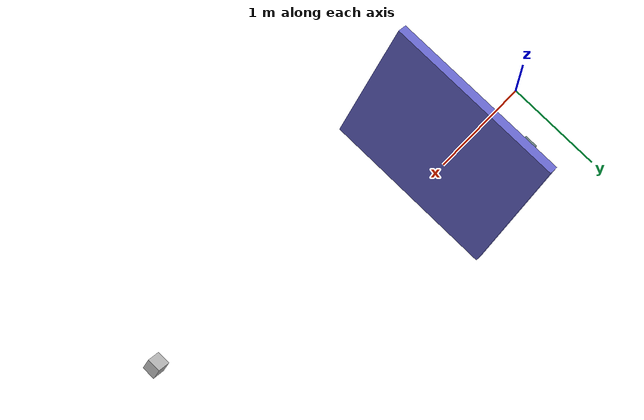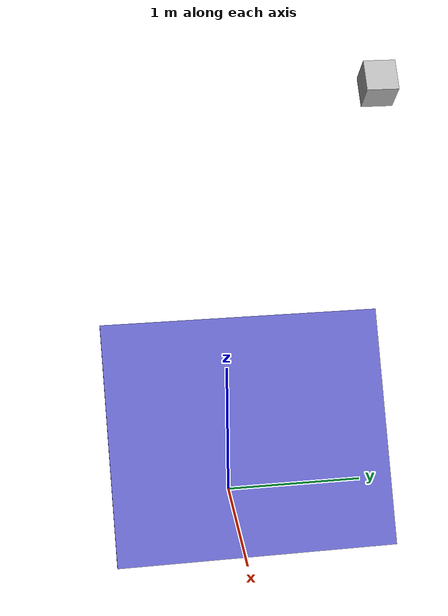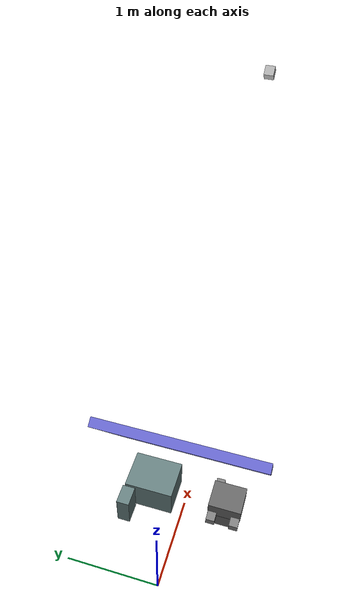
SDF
<sdf version="1.6">
 <world name="default">
  <scene>
   <grid>false</grid>
   <origin_visual>false</origin_visual>
   <sky><clouds><speed>12</speed></clouds></sky>
  </scene>
  <physics name="ode" type="ode">
   <ode><constraints><contact_max_correcting_vel>0</contact_max_correcting_vel></constraints></ode>
   <max_step_size>0.002</max_step_size>
   <real_time_update_rate>0</real_time_update_rate>
  </physics>
  <plugin name="stepping_plugin" filename="libstepping_plugin.so"/>
  <plugin name="gazebo_ros_tf_plugin" filename="libgazebo_ros_tf_plugin.so">
   <model_names>victor table</model_names>
  </plugin>
  <plugin name="collision_map_plugin" filename="libcollision_map_plugin.so"/>
  <include><uri>model://sun</uri></include>
  <include><pose>1 0 1 0 1 0</pose><uri>model://car_hood</uri></include>
  <include><pose>0.8 -0.5 0.4 0 0 0</pose><uri>model://car_engine2</uri></include>
  <include><pose>0.5 0.5 0.4 0 0 0</pose><uri>model://car_tube_and_tank</uri></include>
  <include><uri>model://debugging_camera</uri></include>
 </world>
</sdf>

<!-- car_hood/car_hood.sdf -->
<sdf version="1.6">
    <model name="car_hood">
        <allow_auto_disable>true</allow_auto_disable>
        <link name="link_1">
            <kinematic>true</kinematic>
            <pose>0 0 0.05 0 0 0 0</pose>
            <visual name="visual">
                <geometry>
                    <box>
                        <size>1.5 1.75 0.1</size>
                    </box>
                </geometry>
                <material>
                    <ambient>0.4 0.4 0.8 1.0</ambient>
                    <diffuse>0.4 0.4 0.8 1.0</diffuse>
                </material>
            </visual>
            <collision name="collision">
                <geometry>
                    <box>
                        <size>1.5 1.75 0.1</size>
                    </box>
                </geometry>
            </collision>
        </link>
    </model>
</sdf>

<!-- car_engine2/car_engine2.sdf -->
<sdf version="1.6">
    <model name="car_engine2">
        <allow_auto_disable>true</allow_auto_disable>
        <link name="body2">
            <kinematic>true</kinematic>
            <pose>0 0 0.06 0 0 0 0</pose>
            <visual name="visual">
                <geometry>
                    <box>
                        <size>0.26 0.30 0.21</size>
                    </box>
                </geometry>
                <material>
                    <ambient>0.4 0.4 0.4 1.0</ambient>
                    <diffuse>0.4 0.4 0.4 1.0</diffuse>
                </material>
            </visual>
            <collision name="collision">
                <geometry>
                    <box>
                        <size>0.26 0.30 0.21</size>
                    </box>
                </geometry>
            </collision>
        </link>
        <link name="body">
            <kinematic>true</kinematic>
            <pose>0 0 0.24 0 0 0 0</pose>
            <visual name="visual">
                <geometry>
                    <box>
                        <size>0.30 0.34 0.16</size>
                    </box>
                </geometry>
                <material>
                    <ambient>0.4 0.4 0.4 1.0</ambient>
                    <diffuse>0.4 0.4 0.4 1.0</diffuse>
                </material>
            </visual>
            <collision name="collision">
                <geometry>
                    <box>
                        <size>0.30 0.34 0.16</size>
                    </box>
                </geometry>
                <surface>
                    <friction>
                        <ode>
                            <mu>10.00</mu>
                            <mu2>10.00</mu2>
                        </ode>
                    </friction>
                    <contact>
                        <ode>
                            <kp>1e15</kp>
                            <kd>1e11</kd>
                        </ode>
                    </contact>
                </surface>
            </collision>
        </link>
        <link name="lift_tab1">
            <kinematic>true</kinematic>
            <pose>0.20 0.12 0.18 0 0 0 0</pose>
            <visual name="visual">
                <geometry>
                    <box>
                        <size>0.1 0.09 0.07</size>
                    </box>
                </geometry>
                <material>
                    <ambient>0.5 0.5 0.5 1.0</ambient>
                    <diffuse>0.5 0.5 0.5 1.0</diffuse>
                </material>
            </visual>
            <collision name="collision">
                <geometry>
                    <box>
                        <size>0.1 0.09 0.07</size>
                    </box>
                </geometry>
            </collision>
        </link>
        <link name="lift_tab3">
            <kinematic>true</kinematic>
            <pose>-0.20 0.12 0.18 0 0 0 0</pose>
            <visual name="visual">
                <geometry>
                    <box>
                        <size>0.1 0.09 0.07</size>
                    </box>
                </geometry>
                <material>
                    <ambient>0.5 0.5 0.5 1.0</ambient>
                    <diffuse>0.5 0.5 0.5 1.0</diffuse>
                </material>
            </visual>
            <collision name="collision">
                <geometry>
                    <box>
                        <size>0.1 0.09 0.07</size>
                    </box>
                </geometry>
            </collision>
        </link>
        <link name="lift_tab4">
            <kinematic>true</kinematic>
            <pose>-0.20 -0.12 0.18 0 0 0 0</pose>
            <visual name="visual">
                <geometry>
                    <box>
                        <size>0.1 0.09 0.07</size>
                    </box>
                </geometry>
                <material>
                    <ambient>0.5 0.5 0.5 1.0</ambient>
                    <diffuse>0.5 0.5 0.5 1.0</diffuse>
                </material>
            </visual>
            <collision name="collision">
                <geometry>
                    <box>
                        <size>0.1 0.09 0.07</size>
                    </box>
                </geometry>
            </collision>
        </link>
    </model>
</sdf>

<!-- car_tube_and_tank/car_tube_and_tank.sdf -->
<sdf version="1.6">
    <model name="car_tube_and_tank">
        <allow_auto_disable>true</allow_auto_disable>
        <link name="box">
            <kinematic>true</kinematic>
            <pose>0.32 -0.2 0.17 0 0 0 0</pose>
            <visual name="visual">
                <geometry>
                    <box>
                        <size>0.40 0.5 0.34</size>
                    </box>
                </geometry>
                <material>
                    <ambient>0.4 0.5 0.5 1.0</ambient>
                    <diffuse>0.4 0.5 0.5 1.0</diffuse>
                </material>
            </visual>
            <collision name="collision">
                <geometry>
                    <box>
                        <size>0.40 0.5 0.34</size>
                    </box>
                </geometry>
            </collision>
        </link>
        <link name="tube">
            <kinematic>true</kinematic>
            <pose>0 0 0.17 0 0 0 0</pose>
            <visual name="visual">
                <geometry>
                    <box>
                        <size>0.2 0.13 0.34</size>
                    </box>
                </geometry>
                <material>
                    <ambient>0.4 0.5 0.5 1.0</ambient>
                    <diffuse>0.4 0.5 0.5 1.0</diffuse>
                </material>
            </visual>
            <collision name="collision">
                <geometry>
                    <box>
                        <size>0.2 0.18 0.34</size>
                    </box>
                </geometry>
            </collision>
        </link>
    </model>
</sdf>

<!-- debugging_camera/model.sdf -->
<sdf version="1.5">
	<model name='debugging_camera'>
		<static>true</static>
		<pose>3.8 0 3.8 0 0.75 3.14</pose>
		<link name='link'>
			<visual name='visual'>
				<geometry>
					<box>
						<size>0.1 0.1 0.1</size>
					</box>
				</geometry>
			</visual>
			<sensor type="camera" name="camera1">
				<update_rate>30.0</update_rate>
				<camera name="head">
					<horizontal_fov>1.3962634</horizontal_fov>
					<image>
					<width>800</width>
					<height>800</height>
					<format>R8G8B8</format>
					</image>
					<clip>
					<near>0.02</near>
					<far>300</far>
					</clip>
					<noise>
					<type>gaussian</type>
					<!-- Noise is sampled independently per pixel on each frame.
						That pixel's noise value is added to each of its color
						channels, which at that point lie in the range [0,1]. -->
					<mean>0.0</mean>
					<stddev>0.007</stddev>
					</noise>
				</camera>
				<plugin name="camera_controller" filename="libgazebo_ros_camera.so">
					<alwaysOn>true</alwaysOn>
					<updateRate>0.0</updateRate>
					<cameraName>debugging/camera</cameraName>
					<imageTopicName>image_raw</imageTopicName>
					<cameraInfoTopicName>camera_info</cameraInfoTopicName>
					<frameName>camera_link</frameName>
					<hackBaseline>0.07</hackBaseline>
					<distortionK1>0.0</distortionK1>
					<distortionK2>0.0</distortionK2>
					<distortionK3>0.0</distortionK3>
					<distortionT1>0.0</distortionT1>
					<distortionT2>0.0</distortionT2>
				</plugin>
			</sensor>
		</link>
	</model>
</sdf>
